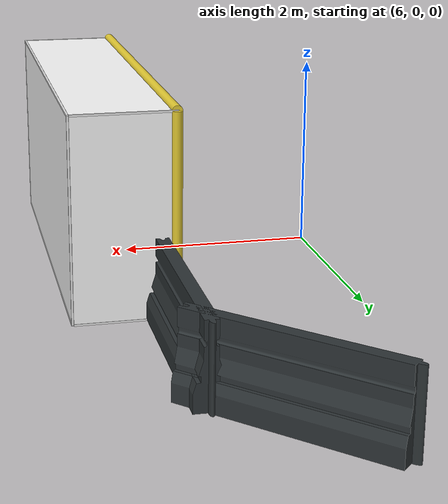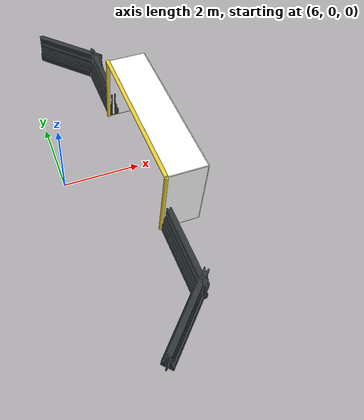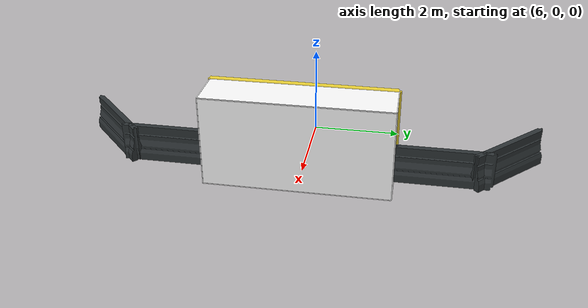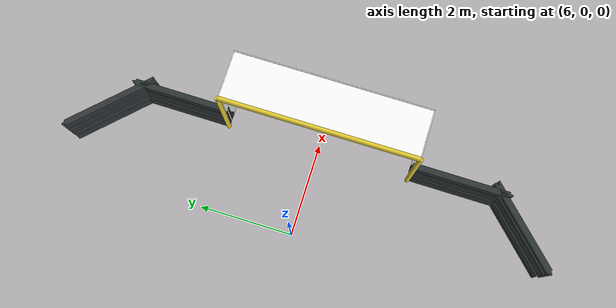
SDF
<sdf version="1.7">
 <model name="Soccer_Field_walls">
  <model name="Barrier">
   <link name="link">
    <inertial>
     <mass>1</mass>
     <inertia><ixx>1</ixx><ixy>0</ixy><ixz>0</ixz><iyy>1</iyy><iyz>0</iyz><izz>1</izz></inertia>
    </inertial>
    <visual name="visual">
     <geometry>
      <mesh>
       <uri>model://drc_practice_orange_jersey_barrier/meshes/jersey_barrier.dae</uri>
       <scale>0.5 1.15 0.75</scale>
      </mesh>
     </geometry>
     <material>
      <shader type="pixel"><normal_map>__default__</normal_map></shader>
      <script><name>ModelPreview_8::link::visual_MATERIAL_</name><uri>__default__</uri></script>
      <ambient>0.533 0.541 0.522 1</ambient>
      <diffuse>0.18 0.204 0.212 1</diffuse>
      <specular>0 0 0 1</specular>
      <emissive>0 0 0 1</emissive>
     </material>
    </visual>
    <collision name="collision">
     <geometry>
      <mesh>
       <uri>/home/llyttle/.gazebo/models/drc_practice_orange_jersey_barrier/meshes/jersey_barrier.dae</uri>
       <scale>0.5 1.15 0.75</scale>
      </mesh>
     </geometry>
     <surface>
      <friction>
       <ode><mu>1</mu><mu2>1</mu2><fdir1>0 0 0</fdir1><slip1>0</slip1><slip2>0</slip2></ode>
       <torsional>
        <coefficient>1</coefficient>
        <patch_radius>0</patch_radius>
        <surface_radius>0</surface_radius>
        <use_patch_radius>1</use_patch_radius>
        <ode><slip>0</slip></ode>
       </torsional>
      </friction>
      <bounce><restitution_coefficient>0</restitution_coefficient><threshold>1e+06</threshold></bounce>
      <contact>
       <collide_without_contact>0</collide_without_contact>
       <collide_without_contact_bitmask>1</collide_without_contact_bitmask>
       <collide_bitmask>1</collide_bitmask>
       <ode>
        <soft_cfm>0</soft_cfm>
        <soft_erp>0.2</soft_erp>
        <kp>1e+13</kp>
        <kd>1</kd>
        <max_vel>0.01</max_vel>
        <min_depth>0</min_depth>
       </ode>
       <bullet>
        <split_impulse>1</split_impulse>
        <split_impulse_penetration_threshold>-0.01</split_impulse_penetration_threshold>
        <soft_cfm>0</soft_cfm>
        <soft_erp>0.2</soft_erp>
        <kp>1e+13</kp>
        <kd>1</kd>
       </bullet>
      </contact>
     </surface>
    </collision>
   </link>
   <static>1</static>
   <pose>7.99542 -2.99605 0 0 -0 0</pose>
  </model>
  <model name="Barrier_clone_clone_0_clone">
   <link name="link">
    <inertial>
     <mass>1</mass>
     <inertia><ixx>1</ixx><ixy>0</ixy><ixz>0</ixz><iyy>1</iyy><iyz>0</iyz><izz>1</izz></inertia>
    </inertial>
    <visual name="visual">
     <geometry>
      <mesh>
       <uri>model://drc_practice_orange_jersey_barrier/meshes/jersey_barrier.dae</uri>
       <scale>0.5 1.15 0.75</scale>
      </mesh>
     </geometry>
     <material>
      <shader type="pixel"><normal_map>__default__</normal_map></shader>
      <script><name>ModelPreview_8::link::visual_MATERIAL_</name><uri>__default__</uri></script>
      <ambient>0.533 0.541 0.522 1</ambient>
      <diffuse>0.18 0.204 0.212 1</diffuse>
      <specular>0 0 0 1</specular>
      <emissive>0 0 0 1</emissive>
     </material>
    </visual>
    <collision name="collision">
     <geometry>
      <mesh>
       <uri>/home/llyttle/.gazebo/models/drc_practice_orange_jersey_barrier/meshes/jersey_barrier.dae</uri>
       <scale>0.5 1.15 0.75</scale>
      </mesh>
     </geometry>
     <surface>
      <friction>
       <ode><mu>1</mu><mu2>1</mu2><fdir1>0 0 0</fdir1><slip1>0</slip1><slip2>0</slip2></ode>
       <torsional>
        <coefficient>1</coefficient>
        <patch_radius>0</patch_radius>
        <surface_radius>0</surface_radius>
        <use_patch_radius>1</use_patch_radius>
        <ode><slip>0</slip></ode>
       </torsional>
      </friction>
      <bounce><restitution_coefficient>0</restitution_coefficient><threshold>1e+06</threshold></bounce>
      <contact>
       <collide_without_contact>0</collide_without_contact>
       <collide_without_contact_bitmask>1</collide_without_contact_bitmask>
       <collide_bitmask>1</collide_bitmask>
       <ode>
        <soft_cfm>0</soft_cfm>
        <soft_erp>0.2</soft_erp>
        <kp>1e+13</kp>
        <kd>1</kd>
        <max_vel>0.01</max_vel>
        <min_depth>0</min_depth>
       </ode>
       <bullet>
        <split_impulse>1</split_impulse>
        <split_impulse_penetration_threshold>-0.01</split_impulse_penetration_threshold>
        <soft_cfm>0</soft_cfm>
        <soft_erp>0.2</soft_erp>
        <kp>1e+13</kp>
        <kd>1</kd>
       </bullet>
      </contact>
     </surface>
    </collision>
   </link>
   <static>1</static>
   <pose>7.99542 3.00395 0 0 0 -3.14159</pose>
  </model>
  <model name="Barrier_clone_clone_clone_12">
   <link name="link">
    <inertial>
     <mass>1</mass>
     <inertia><ixx>1</ixx><ixy>0</ixy><ixz>0</ixz><iyy>1</iyy><iyz>0</iyz><izz>1</izz></inertia>
    </inertial>
    <visual name="visual">
     <geometry>
      <mesh>
       <uri>model://drc_practice_orange_jersey_barrier/meshes/jersey_barrier.dae</uri>
       <scale>0.5 1.15 0.75</scale>
      </mesh>
     </geometry>
     <material>
      <shader type="pixel"><normal_map>__default__</normal_map></shader>
      <script><name>ModelPreview_8::link::visual_MATERIAL_</name><uri>__default__</uri></script>
      <ambient>0.533 0.541 0.522 1</ambient>
      <diffuse>0.18 0.204 0.212 1</diffuse>
      <specular>0 0 0 1</specular>
      <emissive>0 0 0 1</emissive>
     </material>
    </visual>
    <collision name="collision">
     <geometry>
      <mesh>
       <uri>/home/llyttle/.gazebo/models/drc_practice_orange_jersey_barrier/meshes/jersey_barrier.dae</uri>
       <scale>0.5 1.15 0.75</scale>
      </mesh>
     </geometry>
     <surface>
      <friction>
       <ode><mu>1</mu><mu2>1</mu2><fdir1>0 0 0</fdir1><slip1>0</slip1><slip2>0</slip2></ode>
       <torsional>
        <coefficient>1</coefficient>
        <patch_radius>0</patch_radius>
        <surface_radius>0</surface_radius>
        <use_patch_radius>1</use_patch_radius>
        <ode><slip>0</slip></ode>
       </torsional>
      </friction>
      <bounce><restitution_coefficient>0</restitution_coefficient><threshold>1e+06</threshold></bounce>
      <contact>
       <collide_without_contact>0</collide_without_contact>
       <collide_without_contact_bitmask>1</collide_without_contact_bitmask>
       <collide_bitmask>1</collide_bitmask>
       <ode>
        <soft_cfm>0</soft_cfm>
        <soft_erp>0.2</soft_erp>
        <kp>1e+13</kp>
        <kd>1</kd>
        <max_vel>0.01</max_vel>
        <min_depth>0</min_depth>
       </ode>
       <bullet>
        <split_impulse>1</split_impulse>
        <split_impulse_penetration_threshold>-0.01</split_impulse_penetration_threshold>
        <soft_cfm>0</soft_cfm>
        <soft_erp>0.2</soft_erp>
        <kp>1e+13</kp>
        <kd>1</kd>
       </bullet>
      </contact>
     </surface>
    </collision>
   </link>
   <static>1</static>
   <pose>7.45572 -4.41021 0 0 0 -0.785402</pose>
  </model>
  <model name="Barrier_clone_clone_clone_13">
   <link name="link">
    <inertial>
     <mass>1</mass>
     <inertia><ixx>1</ixx><ixy>0</ixy><ixz>0</ixz><iyy>1</iyy><iyz>0</iyz><izz>1</izz></inertia>
    </inertial>
    <visual name="visual">
     <geometry>
      <mesh>
       <uri>model://drc_practice_orange_jersey_barrier/meshes/jersey_barrier.dae</uri>
       <scale>0.5 1.15 0.75</scale>
      </mesh>
     </geometry>
     <material>
      <shader type="pixel"><normal_map>__default__</normal_map></shader>
      <script><name>ModelPreview_8::link::visual_MATERIAL_</name><uri>__default__</uri></script>
      <ambient>0.533 0.541 0.522 1</ambient>
      <diffuse>0.18 0.204 0.212 1</diffuse>
      <specular>0 0 0 1</specular>
      <emissive>0 0 0 1</emissive>
     </material>
    </visual>
    <collision name="collision">
     <geometry>
      <mesh>
       <uri>/home/llyttle/.gazebo/models/drc_practice_orange_jersey_barrier/meshes/jersey_barrier.dae</uri>
       <scale>0.5 1.15 0.75</scale>
      </mesh>
     </geometry>
     <surface>
      <friction>
       <ode><mu>1</mu><mu2>1</mu2><fdir1>0 0 0</fdir1><slip1>0</slip1><slip2>0</slip2></ode>
       <torsional>
        <coefficient>1</coefficient>
        <patch_radius>0</patch_radius>
        <surface_radius>0</surface_radius>
        <use_patch_radius>1</use_patch_radius>
        <ode><slip>0</slip></ode>
       </torsional>
      </friction>
      <bounce><restitution_coefficient>0</restitution_coefficient><threshold>1e+06</threshold></bounce>
      <contact>
       <collide_without_contact>0</collide_without_contact>
       <collide_without_contact_bitmask>1</collide_without_contact_bitmask>
       <collide_bitmask>1</collide_bitmask>
       <ode>
        <soft_cfm>0</soft_cfm>
        <soft_erp>0.2</soft_erp>
        <kp>1e+13</kp>
        <kd>1</kd>
        <max_vel>0.01</max_vel>
        <min_depth>0</min_depth>
       </ode>
       <bullet>
        <split_impulse>1</split_impulse>
        <split_impulse_penetration_threshold>-0.01</split_impulse_penetration_threshold>
        <soft_cfm>0</soft_cfm>
        <soft_erp>0.2</soft_erp>
        <kp>1e+13</kp>
        <kd>1</kd>
       </bullet>
      </contact>
     </surface>
    </collision>
   </link>
   <static>1</static>
   <pose>7.44769 4.38043 0 0 0 -2.3562</pose>
  </model>
  <model name="Goal">
   <link name="left_post">
    <pose>-0.086533 2 1 0 -0 0</pose>
    <inertial>
     <mass>1</mass>
     <inertia><ixx>1</ixx><ixy>0</ixy><ixz>0</ixz><iyy>1</iyy><iyz>0</iyz><izz>1</izz></inertia>
    </inertial>
    <visual name="visual">
     <geometry><cylinder><radius>0.05</radius><length>2</length></cylinder></geometry>
     <material>
      <script><uri>file://media/materials/scripts/gazebo.material</uri><name>Gazebo/ZincYellow</name></script>
      <shader type="pixel"><normal_map>__default__</normal_map></shader>
      <ambient>0.208 0.208 0.973 1</ambient>
      <diffuse>0.208 0.208 0.973 1</diffuse>
      <specular>0.208 0.208 0.973 1</specular>
      <emissive>0 0 0 1</emissive>
     </material>
    </visual>
    <collision name="collision">
     <geometry><cylinder><radius>0.05</radius><length>2</length></cylinder></geometry>
     <surface>
      <friction>
       <ode><mu>1</mu><mu2>1</mu2><fdir1>0 0 0</fdir1><slip1>0</slip1><slip2>0</slip2></ode>
       <torsional>
        <coefficient>1</coefficient>
        <patch_radius>0</patch_radius>
        <surface_radius>0</surface_radius>
        <use_patch_radius>1</use_patch_radius>
        <ode><slip>0</slip></ode>
       </torsional>
      </friction>
      <bounce><restitution_coefficient>0</restitution_coefficient><threshold>1e+06</threshold></bounce>
      <contact>
       <collide_without_contact>0</collide_without_contact>
       <collide_without_contact_bitmask>1</collide_without_contact_bitmask>
       <collide_bitmask>1</collide_bitmask>
       <ode>
        <soft_cfm>0</soft_cfm>
        <soft_erp>0.2</soft_erp>
        <kp>1e+13</kp>
        <kd>1</kd>
        <max_vel>0.01</max_vel>
        <min_depth>0</min_depth>
       </ode>
       <bullet>
        <split_impulse>1</split_impulse>
        <split_impulse_penetration_threshold>-0.01</split_impulse_penetration_threshold>
        <soft_cfm>0</soft_cfm>
        <soft_erp>0.2</soft_erp>
        <kp>1e+13</kp>
        <kd>1</kd>
       </bullet>
      </contact>
     </surface>
    </collision>
   </link>
   <link name="center_net">
    <pose>0.913467 0 1 0 -0 0</pose>
    <inertial>
     <mass>1</mass>
     <inertia><ixx>1</ixx><ixy>0</ixy><ixz>0</ixz><iyy>1</iyy><iyz>0</iyz><izz>1</izz></inertia>
    </inertial>
    <visual name="visual">
     <geometry><box><size>0.01 4 2</size></box></geometry>
     <material>
      <script>
       <uri>model://robocup09_spl_field/materials/scripts/</uri>
       <uri>model://robocup09_spl_field/materials/textures/</uri>
       <name>RoboCup/Net</name>
      </script>
      <shader type="pixel"><normal_map>__default__</normal_map></shader>
      <ambient>1 1 1 1</ambient>
      <diffuse>1 1 1 1</diffuse>
      <specular>0 0 0 1</specular>
      <emissive>0 0 0 1</emissive>
     </material>
    </visual>
    <collision name="collision">
     <geometry><box><size>0.01 4 2</size></box></geometry>
     <surface>
      <friction>
       <ode><mu>1</mu><mu2>1</mu2><fdir1>0 0 0</fdir1><slip1>0</slip1><slip2>0</slip2></ode>
       <torsional>
        <coefficient>1</coefficient>
        <patch_radius>0</patch_radius>
        <surface_radius>0</surface_radius>
        <use_patch_radius>1</use_patch_radius>
        <ode><slip>0</slip></ode>
       </torsional>
      </friction>
      <bounce><restitution_coefficient>0</restitution_coefficient><threshold>1e+06</threshold></bounce>
      <contact>
       <collide_without_contact>0</collide_without_contact>
       <collide_without_contact_bitmask>1</collide_without_contact_bitmask>
       <collide_bitmask>1</collide_bitmask>
       <ode>
        <soft_cfm>0</soft_cfm>
        <soft_erp>0.2</soft_erp>
        <kp>1e+13</kp>
        <kd>1</kd>
        <max_vel>0.01</max_vel>
        <min_depth>0</min_depth>
       </ode>
       <bullet>
        <split_impulse>1</split_impulse>
        <split_impulse_penetration_threshold>-0.01</split_impulse_penetration_threshold>
        <soft_cfm>0</soft_cfm>
        <soft_erp>0.2</soft_erp>
        <kp>1e+13</kp>
        <kd>1</kd>
       </bullet>
      </contact>
     </surface>
    </collision>
   </link>
   <link name="center_support_horiz_upper">
    <pose>0.913467 0 2 3.14159 1.57079 3.14159</pose>
    <inertial>
     <mass>1</mass>
     <inertia><ixx>1</ixx><ixy>0</ixy><ixz>0</ixz><iyy>1</iyy><iyz>0</iyz><izz>1</izz></inertia>
    </inertial>
    <visual name="visual">
     <geometry><box><size>0.02 4 0.02</size></box></geometry>
     <material>
      <script><uri>file://media/materials/scripts/gazebo.material</uri><name>Gazebo/White</name></script>
      <shader type="pixel"><normal_map>__default__</normal_map></shader>
      <ambient>1 1 1 1</ambient>
      <diffuse>1 1 1 1</diffuse>
      <specular>0 0 0 1</specular>
      <emissive>0 0 0 1</emissive>
     </material>
    </visual>
    <collision name="collision">
     <geometry><box><size>0.02 4 0.02</size></box></geometry>
     <surface>
      <friction>
       <ode><mu>1</mu><mu2>1</mu2><fdir1>0 0 0</fdir1><slip1>0</slip1><slip2>0</slip2></ode>
       <torsional>
        <coefficient>1</coefficient>
        <patch_radius>0</patch_radius>
        <surface_radius>0</surface_radius>
        <use_patch_radius>1</use_patch_radius>
        <ode><slip>0</slip></ode>
       </torsional>
      </friction>
      <bounce><restitution_coefficient>0</restitution_coefficient><threshold>1e+06</threshold></bounce>
      <contact>
       <collide_without_contact>0</collide_without_contact>
       <collide_without_contact_bitmask>1</collide_without_contact_bitmask>
       <collide_bitmask>1</collide_bitmask>
       <ode>
        <soft_cfm>0</soft_cfm>
        <soft_erp>0.2</soft_erp>
        <kp>1e+13</kp>
        <kd>1</kd>
        <max_vel>0.01</max_vel>
        <min_depth>0</min_depth>
       </ode>
       <bullet>
        <split_impulse>1</split_impulse>
        <split_impulse_penetration_threshold>-0.01</split_impulse_penetration_threshold>
        <soft_cfm>0</soft_cfm>
        <soft_erp>0.2</soft_erp>
        <kp>1e+13</kp>
        <kd>1</kd>
       </bullet>
      </contact>
     </surface>
    </collision>
   </link>
   <link name="center_support_horiz_upper_clone">
    <pose>0.913467 0 0 3.14159 1.57079 3.14159</pose>
    <inertial>
     <mass>1</mass>
     <inertia><ixx>1</ixx><ixy>0</ixy><ixz>0</ixz><iyy>1</iyy><iyz>0</iyz><izz>1</izz></inertia>
    </inertial>
    <visual name="visual">
     <geometry><box><size>0.02 4 0.02</size></box></geometry>
     <material>
      <script><uri>file://media/materials/scripts/gazebo.material</uri><name>Gazebo/White</name></script>
      <shader type="pixel"><normal_map>__default__</normal_map></shader>
      <ambient>1 1 1 1</ambient>
      <diffuse>1 1 1 1</diffuse>
      <specular>0 0 0 1</specular>
      <emissive>0 0 0 1</emissive>
     </material>
    </visual>
    <collision name="collision">
     <geometry><box><size>0.02 4 0.02</size></box></geometry>
     <surface>
      <friction>
       <ode><mu>1</mu><mu2>1</mu2><fdir1>0 0 0</fdir1><slip1>0</slip1><slip2>0</slip2></ode>
       <torsional>
        <coefficient>1</coefficient>
        <patch_radius>0</patch_radius>
        <surface_radius>0</surface_radius>
        <use_patch_radius>1</use_patch_radius>
        <ode><slip>0</slip></ode>
       </torsional>
      </friction>
      <bounce><restitution_coefficient>0</restitution_coefficient><threshold>1e+06</threshold></bounce>
      <contact>
       <collide_without_contact>0</collide_without_contact>
       <collide_without_contact_bitmask>1</collide_without_contact_bitmask>
       <collide_bitmask>1</collide_bitmask>
       <ode>
        <soft_cfm>0</soft_cfm>
        <soft_erp>0.2</soft_erp>
        <kp>1e+13</kp>
        <kd>1</kd>
        <max_vel>0.01</max_vel>
        <min_depth>0</min_depth>
       </ode>
       <bullet>
        <split_impulse>1</split_impulse>
        <split_impulse_penetration_threshold>-0.01</split_impulse_penetration_threshold>
        <soft_cfm>0</soft_cfm>
        <soft_erp>0.2</soft_erp>
        <kp>1e+13</kp>
        <kd>1</kd>
       </bullet>
      </contact>
     </surface>
    </collision>
   </link>
   <link name="crossbar">
    <pose>-0.086533 0 2 1.56998 1.57 -9e-06</pose>
    <inertial>
     <mass>1</mass>
     <inertia><ixx>1</ixx><ixy>0</ixy><ixz>0</ixz><iyy>1</iyy><iyz>0</iyz><izz>1</izz></inertia>
    </inertial>
    <visual name="visual">
     <geometry><cylinder><radius>0.05</radius><length>4</length></cylinder></geometry>
     <material>
      <script><uri>file://media/materials/scripts/gazebo.material</uri><name>Gazebo/ZincYellow</name></script>
      <shader type="pixel"><normal_map>__default__</normal_map></shader>
      <ambient>0.973 0.973 0.973 1</ambient>
      <diffuse>0.973 0.973 0.973 1</diffuse>
      <specular>0.973 0.973 0.973	 1</specular>
      <emissive>0 0 0 1</emissive>
     </material>
    </visual>
    <collision name="collision">
     <geometry><cylinder><radius>0.05</radius><length>4</length></cylinder></geometry>
     <surface>
      <friction>
       <ode><mu>1</mu><mu2>1</mu2><fdir1>0 0 0</fdir1><slip1>0</slip1><slip2>0</slip2></ode>
       <torsional>
        <coefficient>1</coefficient>
        <patch_radius>0</patch_radius>
        <surface_radius>0</surface_radius>
        <use_patch_radius>1</use_patch_radius>
        <ode><slip>0</slip></ode>
       </torsional>
      </friction>
      <bounce><restitution_coefficient>0</restitution_coefficient><threshold>1e+06</threshold></bounce>
      <contact>
       <collide_without_contact>0</collide_without_contact>
       <collide_without_contact_bitmask>1</collide_without_contact_bitmask>
       <collide_bitmask>1</collide_bitmask>
       <ode>
        <soft_cfm>0</soft_cfm>
        <soft_erp>0.2</soft_erp>
        <kp>1e+13</kp>
        <kd>1</kd>
        <max_vel>0.01</max_vel>
        <min_depth>0</min_depth>
       </ode>
       <bullet>
        <split_impulse>1</split_impulse>
        <split_impulse_penetration_threshold>-0.01</split_impulse_penetration_threshold>
        <soft_cfm>0</soft_cfm>
        <soft_erp>0.2</soft_erp>
        <kp>1e+13</kp>
        <kd>1</kd>
       </bullet>
      </contact>
     </surface>
    </collision>
   </link>
   <link name="left_support_horiz_lower">
    <pose>0.4 2 0 0 -0 0</pose>
    <inertial>
     <mass>1</mass>
     <inertia><ixx>1</ixx><ixy>0</ixy><ixz>0</ixz><iyy>1</iyy><iyz>0</iyz><izz>1</izz></inertia>
    </inertial>
    <visual name="visual">
     <geometry><box><size>1 0.02 0.02</size></box></geometry>
     <material>
      <script><uri>file://media/materials/scripts/gazebo.material</uri><name>Gazebo/White</name></script>
      <shader type="pixel"><normal_map>__default__</normal_map></shader>
      <ambient>1 1 1 1</ambient>
      <diffuse>1 1 1 1</diffuse>
      <specular>0 0 0 1</specular>
      <emissive>0 0 0 1</emissive>
     </material>
    </visual>
    <collision name="collision">
     <geometry><box><size>1 0.02 0.02</size></box></geometry>
     <surface>
      <friction>
       <ode><mu>1</mu><mu2>1</mu2><fdir1>0 0 0</fdir1><slip1>0</slip1><slip2>0</slip2></ode>
       <torsional>
        <coefficient>1</coefficient>
        <patch_radius>0</patch_radius>
        <surface_radius>0</surface_radius>
        <use_patch_radius>1</use_patch_radius>
        <ode><slip>0</slip></ode>
       </torsional>
      </friction>
      <bounce><restitution_coefficient>0</restitution_coefficient><threshold>1e+06</threshold></bounce>
      <contact>
       <collide_without_contact>0</collide_without_contact>
       <collide_without_contact_bitmask>1</collide_without_contact_bitmask>
       <collide_bitmask>1</collide_bitmask>
       <ode>
        <soft_cfm>0</soft_cfm>
        <soft_erp>0.2</soft_erp>
        <kp>1e+13</kp>
        <kd>1</kd>
        <max_vel>0.01</max_vel>
        <min_depth>0</min_depth>
       </ode>
       <bullet>
        <split_impulse>1</split_impulse>
        <split_impulse_penetration_threshold>-0.01</split_impulse_penetration_threshold>
        <soft_cfm>0</soft_cfm>
        <soft_erp>0.2</soft_erp>
        <kp>1e+13</kp>
        <kd>1</kd>
       </bullet>
      </contact>
     </surface>
    </collision>
   </link>
   <link name="left_support_horiz_lower_clone">
    <pose>0.4 2 2 0 -0 0</pose>
    <inertial>
     <mass>1</mass>
     <inertia><ixx>1</ixx><ixy>0</ixy><ixz>0</ixz><iyy>1</iyy><iyz>0</iyz><izz>1</izz></inertia>
    </inertial>
    <visual name="visual">
     <geometry><box><size>1 0.02 0.02</size></box></geometry>
     <material>
      <script><uri>file://media/materials/scripts/gazebo.material</uri><name>Gazebo/White</name></script>
      <shader type="pixel"><normal_map>__default__</normal_map></shader>
      <ambient>1 1 1 1</ambient>
      <diffuse>1 1 1 1</diffuse>
      <specular>0 0 0 1</specular>
      <emissive>0 0 0 1</emissive>
     </material>
    </visual>
    <collision name="collision">
     <geometry><box><size>1 0.02 0.02</size></box></geometry>
     <surface>
      <friction>
       <ode><mu>1</mu><mu2>1</mu2><fdir1>0 0 0</fdir1><slip1>0</slip1><slip2>0</slip2></ode>
       <torsional>
        <coefficient>1</coefficient>
        <patch_radius>0</patch_radius>
        <surface_radius>0</surface_radius>
        <use_patch_radius>1</use_patch_radius>
        <ode><slip>0</slip></ode>
       </torsional>
      </friction>
      <bounce><restitution_coefficient>0</restitution_coefficient><threshold>1e+06</threshold></bounce>
      <contact>
       <collide_without_contact>0</collide_without_contact>
       <collide_without_contact_bitmask>1</collide_without_contact_bitmask>
       <collide_bitmask>1</collide_bitmask>
       <ode>
        <soft_cfm>0</soft_cfm>
        <soft_erp>0.2</soft_erp>
        <kp>1e+13</kp>
        <kd>1</kd>
        <max_vel>0.01</max_vel>
        <min_depth>0</min_depth>
       </ode>
       <bullet>
        <split_impulse>1</split_impulse>
        <split_impulse_penetration_threshold>-0.01</split_impulse_penetration_threshold>
        <soft_cfm>0</soft_cfm>
        <soft_erp>0.2</soft_erp>
        <kp>1e+13</kp>
        <kd>1</kd>
       </bullet>
      </contact>
     </surface>
    </collision>
   </link>
   <link name="left_support_horiz_lower_clone_0">
    <pose>0.4 -2 2 0 -0 0</pose>
    <inertial>
     <mass>1</mass>
     <inertia><ixx>1</ixx><ixy>0</ixy><ixz>0</ixz><iyy>1</iyy><iyz>0</iyz><izz>1</izz></inertia>
    </inertial>
    <visual name="visual">
     <geometry><box><size>1 0.02 0.02</size></box></geometry>
     <material>
      <script><uri>file://media/materials/scripts/gazebo.material</uri><name>Gazebo/White</name></script>
      <shader type="pixel"><normal_map>__default__</normal_map></shader>
      <ambient>1 1 1 1</ambient>
      <diffuse>1 1 1 1</diffuse>
      <specular>0 0 0 1</specular>
      <emissive>0 0 0 1</emissive>
     </material>
    </visual>
    <collision name="collision">
     <geometry><box><size>1 0.02 0.02</size></box></geometry>
     <surface>
      <friction>
       <ode><mu>1</mu><mu2>1</mu2><fdir1>0 0 0</fdir1><slip1>0</slip1><slip2>0</slip2></ode>
       <torsional>
        <coefficient>1</coefficient>
        <patch_radius>0</patch_radius>
        <surface_radius>0</surface_radius>
        <use_patch_radius>1</use_patch_radius>
        <ode><slip>0</slip></ode>
       </torsional>
      </friction>
      <bounce><restitution_coefficient>0</restitution_coefficient><threshold>1e+06</threshold></bounce>
      <contact>
       <collide_without_contact>0</collide_without_contact>
       <collide_without_contact_bitmask>1</collide_without_contact_bitmask>
       <collide_bitmask>1</collide_bitmask>
       <ode>
        <soft_cfm>0</soft_cfm>
        <soft_erp>0.2</soft_erp>
        <kp>1e+13</kp>
        <kd>1</kd>
        <max_vel>0.01</max_vel>
        <min_depth>0</min_depth>
       </ode>
       <bullet>
        <split_impulse>1</split_impulse>
        <split_impulse_penetration_threshold>-0.01</split_impulse_penetration_threshold>
        <soft_cfm>0</soft_cfm>
        <soft_erp>0.2</soft_erp>
        <kp>1e+13</kp>
        <kd>1</kd>
       </bullet>
      </contact>
     </surface>
    </collision>
   </link>
   <link name="left_support_horiz_lower_clone_1">
    <pose>0.4 -2 0 0 -0 0</pose>
    <inertial>
     <mass>1</mass>
     <inertia><ixx>1</ixx><ixy>0</ixy><ixz>0</ixz><iyy>1</iyy><iyz>0</iyz><izz>1</izz></inertia>
    </inertial>
    <visual name="visual">
     <geometry><box><size>1 0.02 0.02</size></box></geometry>
     <material>
      <script><uri>file://media/materials/scripts/gazebo.material</uri><name>Gazebo/White</name></script>
      <shader type="pixel"><normal_map>__default__</normal_map></shader>
      <ambient>1 1 1 1</ambient>
      <diffuse>1 1 1 1</diffuse>
      <specular>0 0 0 1</specular>
      <emissive>0 0 0 1</emissive>
     </material>
    </visual>
    <collision name="collision">
     <geometry><box><size>1 0.02 0.02</size></box></geometry>
     <surface>
      <friction>
       <ode><mu>1</mu><mu2>1</mu2><fdir1>0 0 0</fdir1><slip1>0</slip1><slip2>0</slip2></ode>
       <torsional>
        <coefficient>1</coefficient>
        <patch_radius>0</patch_radius>
        <surface_radius>0</surface_radius>
        <use_patch_radius>1</use_patch_radius>
        <ode><slip>0</slip></ode>
       </torsional>
      </friction>
      <bounce><restitution_coefficient>0</restitution_coefficient><threshold>1e+06</threshold></bounce>
      <contact>
       <collide_without_contact>0</collide_without_contact>
       <collide_without_contact_bitmask>1</collide_without_contact_bitmask>
       <collide_bitmask>1</collide_bitmask>
       <ode>
        <soft_cfm>0</soft_cfm>
        <soft_erp>0.2</soft_erp>
        <kp>1e+13</kp>
        <kd>1</kd>
        <max_vel>0.01</max_vel>
        <min_depth>0</min_depth>
       </ode>
       <bullet>
        <split_impulse>1</split_impulse>
        <split_impulse_penetration_threshold>-0.01</split_impulse_penetration_threshold>
        <soft_cfm>0</soft_cfm>
        <soft_erp>0.2</soft_erp>
        <kp>1e+13</kp>
        <kd>1</kd>
       </bullet>
      </contact>
     </surface>
    </collision>
   </link>
   <link name="right_net">
    <pose>0.4 -2 1 0 -0 0</pose>
    <inertial>
     <mass>1</mass>
     <inertia><ixx>1</ixx><ixy>0</ixy><ixz>0</ixz><iyy>1</iyy><iyz>0</iyz><izz>1</izz></inertia>
    </inertial>
    <visual name="visual">
     <geometry><box><size>1 0.01 2</size></box></geometry>
     <material>
      <script>
       <uri>model://robocup09_spl_field/materials/scripts/</uri>
       <uri>model://robocup09_spl_field/materials/textures/</uri>
       <name>RoboCup/Net</name>
      </script>
      <shader type="pixel"><normal_map>__default__</normal_map></shader>
      <ambient>1 1 1 1</ambient>
      <diffuse>1 1 1 1</diffuse>
      <specular>0 0 0 1</specular>
      <emissive>0 0 0 1</emissive>
     </material>
    </visual>
    <collision name="collision">
     <geometry><box><size>1 0.01 2</size></box></geometry>
     <surface>
      <friction>
       <ode><mu>1</mu><mu2>1</mu2><fdir1>0 0 0</fdir1><slip1>0</slip1><slip2>0</slip2></ode>
       <torsional>
        <coefficient>1</coefficient>
        <patch_radius>0</patch_radius>
        <surface_radius>0</surface_radius>
        <use_patch_radius>1</use_patch_radius>
        <ode><slip>0</slip></ode>
       </torsional>
      </friction>
      <bounce><restitution_coefficient>0</restitution_coefficient><threshold>1e+06</threshold></bounce>
      <contact>
       <collide_without_contact>0</collide_without_contact>
       <collide_without_contact_bitmask>1</collide_without_contact_bitmask>
       <collide_bitmask>1</collide_bitmask>
       <ode>
        <soft_cfm>0</soft_cfm>
        <soft_erp>0.2</soft_erp>
        <kp>1e+13</kp>
        <kd>1</kd>
        <max_vel>0.01</max_vel>
        <min_depth>0</min_depth>
       </ode>
       <bullet>
        <split_impulse>1</split_impulse>
        <split_impulse_penetration_threshold>-0.01</split_impulse_penetration_threshold>
        <soft_cfm>0</soft_cfm>
        <soft_erp>0.2</soft_erp>
        <kp>1e+13</kp>
        <kd>1</kd>
       </bullet>
      </contact>
     </surface>
    </collision>
   </link>
   <link name="right_net_clone">
    <pose>0.4 2 1 0 -0 0</pose>
    <inertial>
     <mass>1</mass>
     <inertia><ixx>1</ixx><ixy>0</ixy><ixz>0</ixz><iyy>1</iyy><iyz>0</iyz><izz>1</izz></inertia>
    </inertial>
    <visual name="visual">
     <geometry><box><size>1 0.01 2</size></box></geometry>
     <material>
      <script>
       <uri>model://robocup09_spl_field/materials/scripts/</uri>
       <uri>model://robocup09_spl_field/materials/textures/</uri>
       <name>RoboCup/Net</name>
      </script>
      <shader type="pixel"><normal_map>__default__</normal_map></shader>
      <ambient>1 1 1 1</ambient>
      <diffuse>1 1 1 1</diffuse>
      <specular>0 0 0 1</specular>
      <emissive>0 0 0 1</emissive>
     </material>
    </visual>
    <collision name="collision">
     <geometry><box><size>1 0.01 2</size></box></geometry>
     <surface>
      <friction>
       <ode><mu>1</mu><mu2>1</mu2><fdir1>0 0 0</fdir1><slip1>0</slip1><slip2>0</slip2></ode>
       <torsional>
        <coefficient>1</coefficient>
        <patch_radius>0</patch_radius>
        <surface_radius>0</surface_radius>
        <use_patch_radius>1</use_patch_radius>
        <ode><slip>0</slip></ode>
       </torsional>
      </friction>
      <bounce><restitution_coefficient>0</restitution_coefficient><threshold>1e+06</threshold></bounce>
      <contact>
       <collide_without_contact>0</collide_without_contact>
       <collide_without_contact_bitmask>1</collide_without_contact_bitmask>
       <collide_bitmask>1</collide_bitmask>
       <ode>
        <soft_cfm>0</soft_cfm>
        <soft_erp>0.2</soft_erp>
        <kp>1e+13</kp>
        <kd>1</kd>
        <max_vel>0.01</max_vel>
        <min_depth>0</min_depth>
       </ode>
       <bullet>
        <split_impulse>1</split_impulse>
        <split_impulse_penetration_threshold>-0.01</split_impulse_penetration_threshold>
        <soft_cfm>0</soft_cfm>
        <soft_erp>0.2</soft_erp>
        <kp>1e+13</kp>
        <kd>1</kd>
       </bullet>
      </contact>
     </surface>
    </collision>
   </link>
   <link name="right_net_clone_0">
    <pose>0.4 0 2 -1.5708 0 0</pose>
    <inertial>
     <mass>1</mass>
     <inertia><ixx>1</ixx><ixy>0</ixy><ixz>0</ixz><iyy>1</iyy><iyz>0</iyz><izz>1</izz></inertia>
    </inertial>
    <visual name="visual">
     <geometry><box><size>1 0.01 4</size></box></geometry>
     <material>
      <script>
       <uri>model://robocup09_spl_field/materials/scripts/</uri>
       <uri>model://robocup09_spl_field/materials/textures/</uri>
       <name>RoboCup/Net</name>
      </script>
      <shader type="pixel"><normal_map>__default__</normal_map></shader>
      <ambient>1 1 1 1</ambient>
      <diffuse>1 1 1 1</diffuse>
      <specular>0 0 0 1</specular>
      <emissive>0 0 0 1</emissive>
     </material>
    </visual>
    <collision name="collision">
     <geometry><box><size>1 0.01 4</size></box></geometry>
     <surface>
      <friction>
       <ode><mu>1</mu><mu2>1</mu2><fdir1>0 0 0</fdir1><slip1>0</slip1><slip2>0</slip2></ode>
       <torsional>
        <coefficient>1</coefficient>
        <patch_radius>0</patch_radius>
        <surface_radius>0</surface_radius>
        <use_patch_radius>1</use_patch_radius>
        <ode><slip>0</slip></ode>
       </torsional>
      </friction>
      <bounce><restitution_coefficient>0</restitution_coefficient><threshold>1e+06</threshold></bounce>
      <contact>
       <collide_without_contact>0</collide_without_contact>
       <collide_without_contact_bitmask>1</collide_without_contact_bitmask>
       <collide_bitmask>1</collide_bitmask>
       <ode>
        <soft_cfm>0</soft_cfm>
        <soft_erp>0.2</soft_erp>
        <kp>1e+13</kp>
        <kd>1</kd>
        <max_vel>0.01</max_vel>
        <min_depth>0</min_depth>
       </ode>
       <bullet>
        <split_impulse>1</split_impulse>
        <split_impulse_penetration_threshold>-0.01</split_impulse_penetration_threshold>
        <soft_cfm>0</soft_cfm>
        <soft_erp>0.2</soft_erp>
        <kp>1e+13</kp>
        <kd>1</kd>
       </bullet>
      </contact>
     </surface>
    </collision>
   </link>
   <link name="right_post">
    <pose>-0.086533 -2 1 0 -0 0</pose>
    <inertial>
     <mass>1</mass>
     <inertia><ixx>1</ixx><ixy>0</ixy><ixz>0</ixz><iyy>1</iyy><iyz>0</iyz><izz>1</izz></inertia>
    </inertial>
    <visual name="visual">
     <geometry><cylinder><radius>0.05</radius><length>2</length></cylinder></geometry>
     <material>
      <script><uri>file://media/materials/scripts/gazebo.material</uri><name>Gazebo/ZincYellow</name></script>
      <shader type="pixel"><normal_map>__default__</normal_map></shader>
      <ambient>0.208 0.208 0.973 1</ambient>
      <diffuse>0.208 0.208 0.973 1</diffuse>
      <specular>0.208 0.208 0.973 1</specular>
      <emissive>0 0 0 1</emissive>
     </material>
    </visual>
    <collision name="collision">
     <geometry><cylinder><radius>0.05</radius><length>2</length></cylinder></geometry>
     <surface>
      <friction>
       <ode><mu>1</mu><mu2>1</mu2><fdir1>0 0 0</fdir1><slip1>0</slip1><slip2>0</slip2></ode>
       <torsional>
        <coefficient>1</coefficient>
        <patch_radius>0</patch_radius>
        <surface_radius>0</surface_radius>
        <use_patch_radius>1</use_patch_radius>
        <ode><slip>0</slip></ode>
       </torsional>
      </friction>
      <bounce><restitution_coefficient>0</restitution_coefficient><threshold>1e+06</threshold></bounce>
      <contact>
       <collide_without_contact>0</collide_without_contact>
       <collide_without_contact_bitmask>1</collide_without_contact_bitmask>
       <collide_bitmask>1</collide_bitmask>
       <ode>
        <soft_cfm>0</soft_cfm>
        <soft_erp>0.2</soft_erp>
        <kp>1e+13</kp>
        <kd>1</kd>
        <max_vel>0.01</max_vel>
        <min_depth>0</min_depth>
       </ode>
       <bullet>
        <split_impulse>1</split_impulse>
        <split_impulse_penetration_threshold>-0.01</split_impulse_penetration_threshold>
        <soft_cfm>0</soft_cfm>
        <soft_erp>0.2</soft_erp>
        <kp>1e+13</kp>
        <kd>1</kd>
       </bullet>
      </contact>
     </surface>
    </collision>
   </link>
   <link name="right_support_vertical">
    <pose>0.913467 -2 1 3.14159 1.57079 3.14159</pose>
    <inertial>
     <mass>1</mass>
     <inertia><ixx>1</ixx><ixy>0</ixy><ixz>0</ixz><iyy>1</iyy><iyz>0</iyz><izz>1</izz></inertia>
    </inertial>
    <visual name="visual">
     <geometry><box><size>2 0.02 0.02</size></box></geometry>
     <material>
      <script><uri>file://media/materials/scripts/gazebo.material</uri><name>Gazebo/White</name></script>
      <shader type="pixel"><normal_map>__default__</normal_map></shader>
      <ambient>1 1 1 1</ambient>
      <diffuse>1 1 1 1</diffuse>
      <specular>0 0 0 1</specular>
      <emissive>0 0 0 1</emissive>
     </material>
    </visual>
    <collision name="collision">
     <geometry><box><size>2 0.02 0.02</size></box></geometry>
     <surface>
      <friction>
       <ode><mu>1</mu><mu2>1</mu2><fdir1>0 0 0</fdir1><slip1>0</slip1><slip2>0</slip2></ode>
       <torsional>
        <coefficient>1</coefficient>
        <patch_radius>0</patch_radius>
        <surface_radius>0</surface_radius>
        <use_patch_radius>1</use_patch_radius>
        <ode><slip>0</slip></ode>
       </torsional>
      </friction>
      <bounce><restitution_coefficient>0</restitution_coefficient><threshold>1e+06</threshold></bounce>
      <contact>
       <collide_without_contact>0</collide_without_contact>
       <collide_without_contact_bitmask>1</collide_without_contact_bitmask>
       <collide_bitmask>1</collide_bitmask>
       <ode>
        <soft_cfm>0</soft_cfm>
        <soft_erp>0.2</soft_erp>
        <kp>1e+13</kp>
        <kd>1</kd>
        <max_vel>0.01</max_vel>
        <min_depth>0</min_depth>
       </ode>
       <bullet>
        <split_impulse>1</split_impulse>
        <split_impulse_penetration_threshold>-0.01</split_impulse_penetration_threshold>
        <soft_cfm>0</soft_cfm>
        <soft_erp>0.2</soft_erp>
        <kp>1e+13</kp>
        <kd>1</kd>
       </bullet>
      </contact>
     </surface>
    </collision>
   </link>
   <link name="right_support_vertical_clone">
    <pose>0.913467 2 1 3.14159 1.57079 3.14159</pose>
    <inertial>
     <mass>1</mass>
     <inertia><ixx>1</ixx><ixy>0</ixy><ixz>0</ixz><iyy>1</iyy><iyz>0</iyz><izz>1</izz></inertia>
    </inertial>
    <visual name="visual">
     <geometry><box><size>2 0.02 0.02</size></box></geometry>
     <material>
      <script><uri>file://media/materials/scripts/gazebo.material</uri><name>Gazebo/White</name></script>
      <shader type="pixel"><normal_map>__default__</normal_map></shader>
      <ambient>1 1 1 1</ambient>
      <diffuse>1 1 1 1</diffuse>
      <specular>0 0 0 1</specular>
      <emissive>0 0 0 1</emissive>
     </material>
    </visual>
    <collision name="collision">
     <geometry><box><size>2 0.02 0.02</size></box></geometry>
     <surface>
      <friction>
       <ode><mu>1</mu><mu2>1</mu2><fdir1>0 0 0</fdir1><slip1>0</slip1><slip2>0</slip2></ode>
       <torsional>
        <coefficient>1</coefficient>
        <patch_radius>0</patch_radius>
        <surface_radius>0</surface_radius>
        <use_patch_radius>1</use_patch_radius>
        <ode><slip>0</slip></ode>
       </torsional>
      </friction>
      <bounce><restitution_coefficient>0</restitution_coefficient><threshold>1e+06</threshold></bounce>
      <contact>
       <collide_without_contact>0</collide_without_contact>
       <collide_without_contact_bitmask>1</collide_without_contact_bitmask>
       <collide_bitmask>1</collide_bitmask>
       <ode>
        <soft_cfm>0</soft_cfm>
        <soft_erp>0.2</soft_erp>
        <kp>1e+13</kp>
        <kd>1</kd>
        <max_vel>0.01</max_vel>
        <min_depth>0</min_depth>
       </ode>
       <bullet>
        <split_impulse>1</split_impulse>
        <split_impulse_penetration_threshold>-0.01</split_impulse_penetration_threshold>
        <soft_cfm>0</soft_cfm>
        <soft_erp>0.2</soft_erp>
        <kp>1e+13</kp>
        <kd>1</kd>
       </bullet>
      </contact>
     </surface>
    </collision>
   </link>
   <static>1</static>
   <pose>7.93623 0.003948 0 0 -0 0</pose>
  </model>
  <static>1</static>
 </model>
</sdf>
